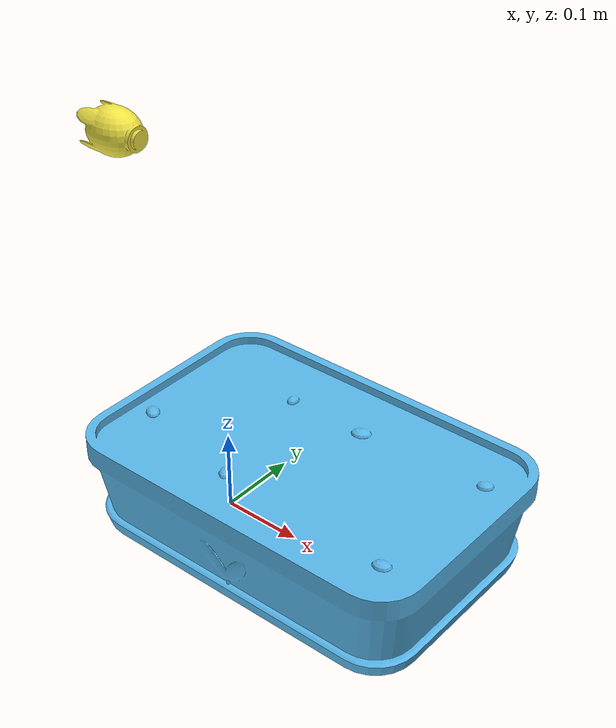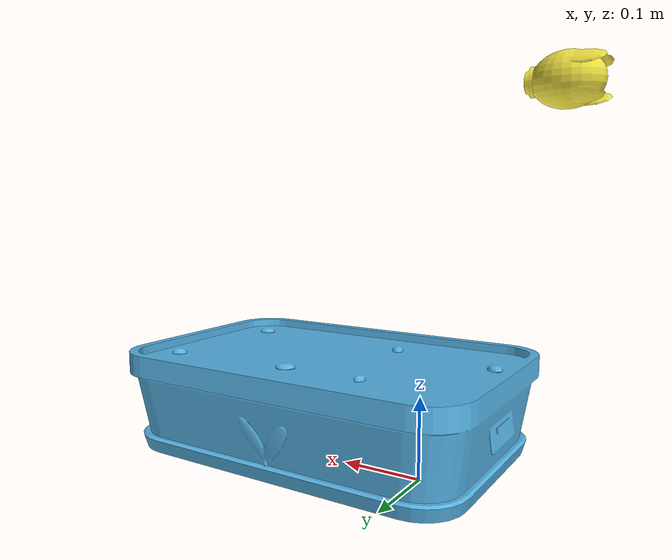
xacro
<?xml version="1.0"?>
<robot name="serabot" xmlns:xacro="http://www.ros.org/wiki/xacro">

  <xacro:arg name="use_lidar" default="true"/>
  <xacro:arg name="use_camera" default="true"/>
  <xacro:arg name="use_imu" default="true"/>

  <!-- Robot body (owner: S1) -->
  <xacro:include filename="chassis.xacro"/>
  <xacro:include filename="wheels.xacro"/>
  <xacro:include filename="camera_mast.xacro"/>
  <xacro:include filename="gazebo_drive.xacro"/>

  <!-- Sensors (owners: LiDAR = Member A, camera = Member B, IMU = shared) -->
  <xacro:include filename="sensors/lidar.xacro"/>
  <xacro:include filename="sensors/camera.xacro"/>
  <xacro:include filename="sensors/imu.xacro"/>

  <xacro:serabot_chassis/>
  <xacro:serabot_wheels/>
  <xacro:serabot_camera_mast/>
  <xacro:serabot_gazebo_drive/>

  <xacro:if value="$(arg use_lidar)">
    <xacro:serabot_lidar parent="base_link"/>
  </xacro:if>
  <xacro:if value="$(arg use_camera)">
    <xacro:serabot_camera parent="camera_mast_link"/>
  </xacro:if>
  <xacro:if value="$(arg use_imu)">
    <xacro:serabot_imu parent="base_link"/>
  </xacro:if>

</robot>

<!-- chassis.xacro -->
<robot xmlns:xacro="http://www.ros.org/wiki/xacro">

  <xacro:include filename="properties.xacro"/>
  <xacro:include filename="materials.xacro"/>
  <xacro:include filename="inertial_macros.xacro"/>

  <xacro:macro name="serabot_chassis">
    <link name="base_footprint"/>

    <joint name="base_joint" type="fixed">
      <parent link="base_footprint"/>
      <child link="base_link"/>
      <origin xyz="0 0 ${base_height}" rpy="0 0 0"/>
    </joint>

    <link name="base_link">
      <xacro:if value="${use_mesh_visuals}">
        <visual name="chassis">
          <origin xyz="${chassis_x} 0 0" rpy="0 0 0"/>
          <geometry>
            <mesh filename="${mesh_dir}/chassis.obj"/>
          </geometry>
        </visual>
      </xacro:if>
      <xacro:unless value="${use_mesh_visuals}">
        <visual name="chassis_body">
          <origin xyz="${chassis_x} 0 0" rpy="0 0 0"/>
          <geometry>
            <box size="${chassis_length} ${chassis_width} ${chassis_height}"/>
          </geometry>
          <xacro:serabot_material name="green"/>
        </visual>
        <visual name="front_bumper">
          <origin xyz="${chassis_x + chassis_length / 2 - bumper_depth / 2 + bumper_protrusion} 0 ${bumper_z}"
                  rpy="0 0 0"/>
          <geometry>
            <box size="${bumper_depth} ${chassis_width + 2 * bumper_protrusion} ${bumper_height}"/>
          </geometry>
          <xacro:serabot_material name="terracotta"/>
        </visual>
      </xacro:unless>
      <collision>
        <origin xyz="${chassis_x} 0 0" rpy="0 0 0"/>
        <geometry>
          <box size="${chassis_length} ${chassis_width} ${chassis_height}"/>
        </geometry>
      </collision>
      <xacro:inertial_box mass="${chassis_mass}" xyz="${chassis_x} 0 0"
                          x="${chassis_length}" y="${chassis_width}" z="${chassis_height}"/>
    </link>
  </xacro:macro>

</robot>

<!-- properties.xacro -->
<robot xmlns:xacro="http://www.ros.org/wiki/xacro">

  <!-- Visuals: Blender meshes (meshes/*.obj) or the primitive fallback (false), e.g. when
       software rendering is too slow. Collisions are always primitives (ADR-012). -->
  <xacro:property name="use_mesh_visuals" value="true"/>

  <xacro:arg name="gazebo_mesh_colors" default="false"/>
  <xacro:if value="$(arg gazebo_mesh_colors)">
    <xacro:property name="mesh_dir" value="package://serabot_description/meshes/gazebo"/>
  </xacro:if>
  <xacro:unless value="$(arg gazebo_mesh_colors)">
    <xacro:property name="mesh_dir" value="package://serabot_description/meshes"/>
  </xacro:unless>

  <!-- base_link is the middle of the wheel axle at axle height; base_footprint is its
       ground projection (contract, ADR-017). All x values below are from base_link. -->

  <!-- Chassis box (contract); its centre is ahead of the axle -->
  <xacro:property name="chassis_length" value="0.45"/>
  <xacro:property name="chassis_width" value="0.30"/>
  <xacro:property name="chassis_height" value="0.12"/>
  <xacro:property name="chassis_mass" value="6.0"/>
  <xacro:property name="chassis_x" value="0.12"/>

  <!-- Drive wheels (contract) -->
  <xacro:property name="wheel_radius" value="0.08"/>
  <xacro:property name="wheel_width" value="0.04"/>
  <xacro:property name="wheel_separation" value="0.36"/>
  <xacro:property name="wheel_x" value="0.0"/>
  <xacro:property name="wheel_mass" value="0.5"/>
  <xacro:property name="wheel_mu" value="1.0"/>

  <!-- base_link sits at axle height above base_footprint (contract) -->
  <xacro:property name="base_height" value="${wheel_radius}"/>

  <!-- Frictionless caster sphere touching the ground (contract) -->
  <xacro:property name="caster_radius" value="0.03"/>
  <xacro:property name="caster_x" value="0.29"/>
  <xacro:property name="caster_z" value="${caster_radius - base_height}"/>
  <xacro:property name="caster_mass" value="0.1"/>
  <xacro:property name="caster_mu" value="0.0"/>

  <!-- Camera mast, standing on the chassis top face (contract) -->
  <xacro:property name="mast_x" value="-0.03"/>
  <xacro:property name="mast_z" value="${chassis_height / 2}"/>
  <xacro:property name="mast_height" value="0.30"/>
  <xacro:property name="mast_radius" value="0.015"/>
  <xacro:property name="mast_mass" value="0.3"/>

  <!-- Front bumper strip (visual only, protrudes slightly to avoid z-fighting) -->
  <xacro:property name="bumper_depth" value="0.02"/>
  <xacro:property name="bumper_height" value="0.04"/>
  <xacro:property name="bumper_protrusion" value="0.002"/>
  <xacro:property name="bumper_z" value="-0.02"/>

  <!-- Sensor mount points used by urdf/sensors/*.xacro (contract) -->
  <xacro:property name="lidar_x" value="0.22"/>
  <xacro:property name="lidar_y" value="0.0"/>
  <xacro:property name="lidar_z" value="0.10"/>
  <xacro:property name="imu_x" value="0.0"/>
  <xacro:property name="imu_y" value="0.0"/>
  <xacro:property name="imu_z" value="0.0"/>
  <xacro:property name="camera_z" value="${mast_height}"/>

  <!-- DiffDrive limits (simulation tuning, not part of the contract) -->
  <xacro:property name="drive_odom_rate" value="30"/>
  <xacro:property name="drive_max_linear_accel" value="1.0"/>
  <xacro:property name="drive_max_angular_accel" value="3.0"/>

</robot>

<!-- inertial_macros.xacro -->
<robot xmlns:xacro="http://www.ros.org/wiki/xacro">

  <xacro:macro name="inertial_box" params="mass x y z xyz:='0 0 0' rpy:='0 0 0'">
    <inertial>
      <origin xyz="${xyz}" rpy="${rpy}"/>
      <mass value="${mass}"/>
      <inertia ixx="${mass * (y * y + z * z) / 12}" ixy="0" ixz="0"
               iyy="${mass * (x * x + z * z) / 12}" iyz="0"
               izz="${mass * (x * x + y * y) / 12}"/>
    </inertial>
  </xacro:macro>

  <xacro:macro name="inertial_cylinder" params="mass radius length xyz:='0 0 0' rpy:='0 0 0'">
    <inertial>
      <origin xyz="${xyz}" rpy="${rpy}"/>
      <mass value="${mass}"/>
      <inertia ixx="${mass * (3 * radius * radius + length * length) / 12}" ixy="0" ixz="0"
               iyy="${mass * (3 * radius * radius + length * length) / 12}" iyz="0"
               izz="${mass * radius * radius / 2}"/>
    </inertial>
  </xacro:macro>

  <xacro:macro name="inertial_sphere" params="mass radius xyz:='0 0 0'">
    <inertial>
      <origin xyz="${xyz}" rpy="0 0 0"/>
      <mass value="${mass}"/>
      <inertia ixx="${2 * mass * radius * radius / 5}" ixy="0" ixz="0"
               iyy="${2 * mass * radius * radius / 5}" iyz="0"
               izz="${2 * mass * radius * radius / 5}"/>
    </inertial>
  </xacro:macro>

</robot>

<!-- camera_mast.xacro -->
<robot xmlns:xacro="http://www.ros.org/wiki/xacro">
  <xacro:macro name="serabot_camera_mast">
    <joint name="camera_mast_joint" type="fixed">
      <parent link="base_link"/>
      <child link="camera_mast_link"/>
      <origin xyz="-0.15 0 0.06" rpy="0 0 0"/>
    </joint>
    <link name="camera_mast_link"/>
  </xacro:macro>
</robot>

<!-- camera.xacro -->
<robot xmlns:xacro="http://www.ros.org/wiki/xacro">

  <xacro:include filename="../properties.xacro"/>
  <xacro:include filename="../materials.xacro"/>
  <xacro:include filename="../inertial_macros.xacro"/>

  <!-- Housing: bounding box of meshes/camera.obj (x -0.038 .. +0.040, lens at +x) -->
  <xacro:property name="camera_body_x" value="0.078"/>
  <xacro:property name="camera_body_y" value="0.054"/>
  <xacro:property name="camera_body_z" value="0.056"/>
  <xacro:property name="camera_body_offset_x" value="0.001"/>
  <xacro:property name="camera_mass" value="0.05"/>

  <!-- Sensor settings (contract, INTERFACES.md section 2.3) -->
  <xacro:property name="camera_topic" value="camera/image_raw"/>
  <xacro:property name="camera_info_topic" value="camera/camera_info"/>
  <xacro:property name="camera_rate" value="15"/>
  <xacro:property name="camera_width" value="640"/>
  <xacro:property name="camera_height" value="480"/>
  <xacro:property name="camera_hfov" value="1.047"/>
  <!-- The near plane is just past the lens (0.04 m) so the housing is not rendered -->
  <xacro:property name="camera_clip_near" value="0.05"/>
  <xacro:property name="camera_clip_far" value="15.0"/>
  <xacro:property name="camera_noise_stddev" value="0.007"/>

  <xacro:macro name="serabot_camera" params="parent">
    <joint name="camera_joint" type="fixed">
      <parent link="${parent}"/>
      <child link="camera_link"/>
      <origin xyz="0 0 ${camera_z}" rpy="0 0 0"/>
    </joint>

    <link name="camera_link">
      <xacro:if value="${use_mesh_visuals}">
        <visual>
          <origin xyz="0 0 0" rpy="0 0 0"/>
          <geometry>
            <mesh filename="${mesh_dir}/camera.obj"/>
          </geometry>
        </visual>
      </xacro:if>
      <xacro:unless value="${use_mesh_visuals}">
        <visual>
          <origin xyz="${camera_body_offset_x} 0 0" rpy="0 0 0"/>
          <geometry>
            <box size="${camera_body_x} ${camera_body_y} ${camera_body_z}"/>
          </geometry>
          <xacro:serabot_material name="dark"/>
        </visual>
      </xacro:unless>
      <collision>
        <origin xyz="${camera_body_offset_x} 0 0" rpy="0 0 0"/>
        <geometry>
          <box size="${camera_body_x} ${camera_body_y} ${camera_body_z}"/>
        </geometry>
      </collision>
      <xacro:inertial_box mass="${camera_mass}" x="${camera_body_x}" y="${camera_body_y}"
                          z="${camera_body_z}" xyz="${camera_body_offset_x} 0 0"/>
    </link>

    <!-- Optical frame: a pure coordinate frame (no geometry, no mass), rotated so that
         z looks forward and x points right in the image -->
    <joint name="camera_optical_joint" type="fixed">
      <parent link="camera_link"/>
      <child link="camera_optical_link"/>
      <origin xyz="0 0 0" rpy="${-pi / 2} 0 ${-pi / 2}"/>
    </joint>
    <link name="camera_optical_link"/>

    <gazebo reference="camera_link">
      <sensor name="camera" type="camera">
        <pose>0 0 0 0 0 0</pose>
        <topic>${camera_topic}</topic>
        <gz_frame_id>camera_optical_link</gz_frame_id>
        <update_rate>${camera_rate}</update_rate>
        <always_on>true</always_on>
        <visualize>false</visualize>
        <camera name="camera">
          <camera_info_topic>${camera_info_topic}</camera_info_topic>
          <horizontal_fov>${camera_hfov}</horizontal_fov>
          <image>
            <width>${camera_width}</width>
            <height>${camera_height}</height>
            <format>R8G8B8</format>
          </image>
          <clip>
            <near>${camera_clip_near}</near>
            <far>${camera_clip_far}</far>
          </clip>
          <noise>
            <type>gaussian</type>
            <mean>0.0</mean>
            <stddev>${camera_noise_stddev}</stddev>
          </noise>
        </camera>
      </sensor>
    </gazebo>
  </xacro:macro>

</robot>

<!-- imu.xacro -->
<robot xmlns:xacro="http://www.ros.org/wiki/xacro">

  <xacro:include filename="../properties.xacro"/>
  <xacro:include filename="../materials.xacro"/>
  <xacro:include filename="../inertial_macros.xacro"/>

  <!-- Board: bounding box of meshes/imu.obj -->
  <xacro:property name="imu_board_x" value="0.03"/>
  <xacro:property name="imu_board_y" value="0.025"/>
  <xacro:property name="imu_board_z" value="0.009"/>
  <xacro:property name="imu_mass" value="0.01"/>

  <!-- Sensor settings (INTERFACES.md section 2.4). Noise: typical MEMS IMU values -->
  <xacro:property name="imu_topic" value="imu"/>
  <xacro:property name="imu_rate" value="100"/>
  <xacro:property name="imu_gyro_stddev" value="2e-4"/>
  <xacro:property name="imu_accel_stddev" value="1.7e-2"/>

  <xacro:macro name="serabot_imu_noise" params="stddev">
    <noise type="gaussian">
      <mean>0.0</mean>
      <stddev>${stddev}</stddev>
    </noise>
  </xacro:macro>

  <xacro:macro name="serabot_imu" params="parent">
    <joint name="imu_joint" type="fixed">
      <parent link="${parent}"/>
      <child link="imu_link"/>
      <origin xyz="${imu_x} ${imu_y} ${imu_z}" rpy="0 0 0"/>
    </joint>

    <link name="imu_link">
      <xacro:if value="${use_mesh_visuals}">
        <visual>
          <origin xyz="0 0 0" rpy="0 0 0"/>
          <geometry>
            <mesh filename="${mesh_dir}/imu.obj"/>
          </geometry>
        </visual>
      </xacro:if>
      <xacro:unless value="${use_mesh_visuals}">
        <visual>
          <origin xyz="0 0 0" rpy="0 0 0"/>
          <geometry>
            <box size="${imu_board_x} ${imu_board_y} ${imu_board_z}"/>
          </geometry>
          <xacro:serabot_material name="green"/>
        </visual>
      </xacro:unless>
      <collision>
        <origin xyz="0 0 0" rpy="0 0 0"/>
        <geometry>
          <box size="${imu_board_x} ${imu_board_y} ${imu_board_z}"/>
        </geometry>
      </collision>
      <xacro:inertial_box mass="${imu_mass}" x="${imu_board_x}" y="${imu_board_y}"
                          z="${imu_board_z}"/>
    </link>

    <gazebo reference="imu_link">
      <sensor name="imu" type="imu">
        <pose>0 0 0 0 0 0</pose>
        <topic>${imu_topic}</topic>
        <gz_frame_id>imu_link</gz_frame_id>
        <update_rate>${imu_rate}</update_rate>
        <always_on>true</always_on>
        <visualize>false</visualize>
        <imu>
          <angular_velocity>
            <x><xacro:serabot_imu_noise stddev="${imu_gyro_stddev}"/></x>
            <y><xacro:serabot_imu_noise stddev="${imu_gyro_stddev}"/></y>
            <z><xacro:serabot_imu_noise stddev="${imu_gyro_stddev}"/></z>
          </angular_velocity>
          <linear_acceleration>
            <x><xacro:serabot_imu_noise stddev="${imu_accel_stddev}"/></x>
            <y><xacro:serabot_imu_noise stddev="${imu_accel_stddev}"/></y>
            <z><xacro:serabot_imu_noise stddev="${imu_accel_stddev}"/></z>
          </linear_acceleration>
        </imu>
      </sensor>
    </gazebo>
  </xacro:macro>

</robot>
